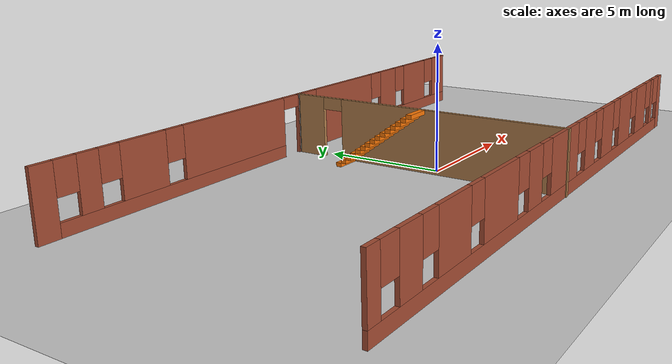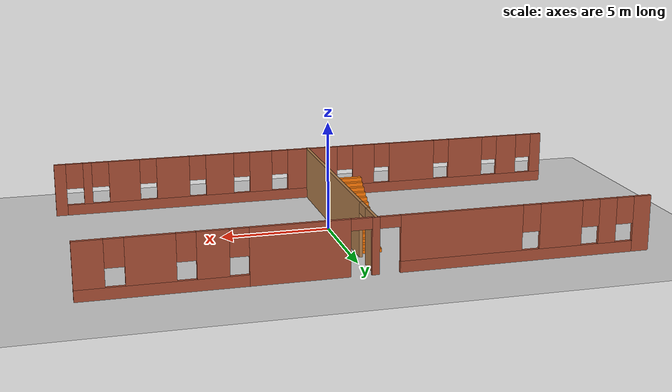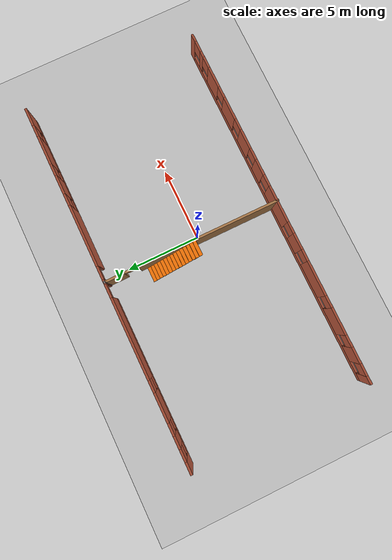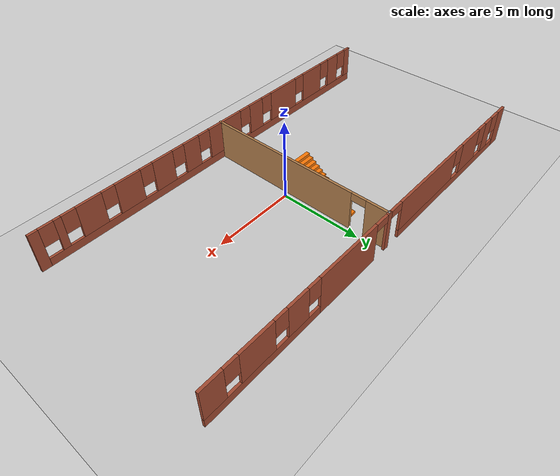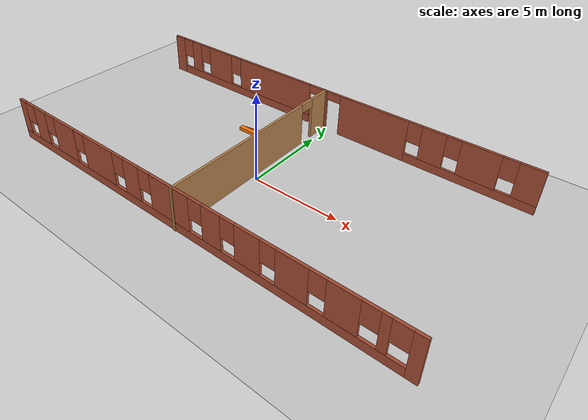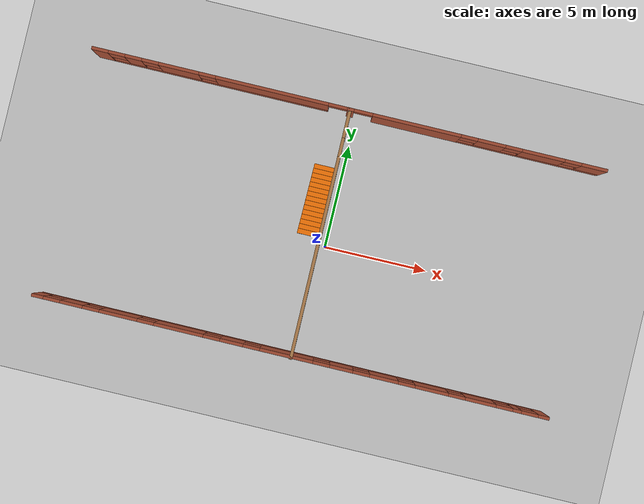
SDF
<sdf version="1.6">
 <world name="default">
  <model name="ground_plane">
   <static>1</static>
   <link name="link">
    <collision name="collision">
     <geometry><plane><normal>0 0 1</normal><size>100 100</size></plane></geometry>
     <surface><friction><ode><mu>100</mu><mu2>50</mu2></ode></friction></surface>
    </collision>
    <visual name="visual">
     <cast_shadows>0</cast_shadows>
     <geometry><plane><normal>0 0 1</normal><size>100 100</size></plane></geometry>
     <material>
      <script><uri>file://media/materials/scripts/gazebo.material</uri><name>Gazebo/Grey</name></script>
     </material>
    </visual>
   </link>
  </model>
  <model name="myhouse">
   <pose>-0.386417 0.578117 0 0 -0 0</pose>
   <link name="Stairs_2">
    <visual name="Stairs_2_Visual_0">
     <pose>-0.53356 3.12759 0.083333 0 -0 0</pose>
     <geometry><box><size>1 0.233333 0.166667</size></box></geometry>
     <material>
      <script><uri>file://media/materials/scripts/gazebo.material</uri><name>Gazebo/Grey</name></script>
      <ambient>0.996078 0.47451 0.0196078 1</ambient>
     </material>
    </visual>
    <collision name="Stairs_2_Collision_0">
     <geometry><box><size>1 0.233333 0.166667</size></box></geometry>
     <pose>-0.53356 3.12759 0.083333 0 -0 0</pose>
    </collision>
    <visual name="Stairs_2_Visual_1">
     <pose>-0.53356 2.89426 0.25 0 -0 0</pose>
     <geometry><box><size>1 0.233333 0.166667</size></box></geometry>
     <material>
      <script><uri>file://media/materials/scripts/gazebo.material</uri><name>Gazebo/Grey</name></script>
      <ambient>0.996078 0.47451 0.0196078 1</ambient>
     </material>
    </visual>
    <collision name="Stairs_2_Collision_1">
     <geometry><box><size>1 0.233333 0.166667</size></box></geometry>
     <pose>-0.53356 2.89426 0.25 0 -0 0</pose>
    </collision>
    <visual name="Stairs_2_Visual_2">
     <pose>-0.53356 2.66093 0.416667 0 -0 0</pose>
     <geometry><box><size>1 0.233333 0.166667</size></box></geometry>
     <material>
      <script><uri>file://media/materials/scripts/gazebo.material</uri><name>Gazebo/Grey</name></script>
      <ambient>0.996078 0.47451 0.0196078 1</ambient>
     </material>
    </visual>
    <collision name="Stairs_2_Collision_2">
     <geometry><box><size>1 0.233333 0.166667</size></box></geometry>
     <pose>-0.53356 2.66093 0.416667 0 -0 0</pose>
    </collision>
    <visual name="Stairs_2_Visual_3">
     <pose>-0.53356 2.4276 0.583333 0 -0 0</pose>
     <geometry><box><size>1 0.233333 0.166667</size></box></geometry>
     <material>
      <script><uri>file://media/materials/scripts/gazebo.material</uri><name>Gazebo/Grey</name></script>
      <ambient>0.996078 0.47451 0.0196078 1</ambient>
     </material>
    </visual>
    <collision name="Stairs_2_Collision_3">
     <geometry><box><size>1 0.233333 0.166667</size></box></geometry>
     <pose>-0.53356 2.4276 0.583333 0 -0 0</pose>
    </collision>
    <visual name="Stairs_2_Visual_4">
     <pose>-0.53356 2.19426 0.75 0 -0 0</pose>
     <geometry><box><size>1 0.233333 0.166667</size></box></geometry>
     <material>
      <script><uri>file://media/materials/scripts/gazebo.material</uri><name>Gazebo/Grey</name></script>
      <ambient>0.996078 0.47451 0.0196078 1</ambient>
     </material>
    </visual>
    <collision name="Stairs_2_Collision_4">
     <geometry><box><size>1 0.233333 0.166667</size></box></geometry>
     <pose>-0.53356 2.19426 0.75 0 -0 0</pose>
    </collision>
    <visual name="Stairs_2_Visual_5">
     <pose>-0.53356 1.96093 0.916667 0 -0 0</pose>
     <geometry><box><size>1 0.233333 0.166667</size></box></geometry>
     <material>
      <script><uri>file://media/materials/scripts/gazebo.material</uri><name>Gazebo/Grey</name></script>
      <ambient>0.996078 0.47451 0.0196078 1</ambient>
     </material>
    </visual>
    <collision name="Stairs_2_Collision_5">
     <geometry><box><size>1 0.233333 0.166667</size></box></geometry>
     <pose>-0.53356 1.96093 0.916667 0 -0 0</pose>
    </collision>
    <visual name="Stairs_2_Visual_6">
     <pose>-0.53356 1.72759 1.08333 0 -0 0</pose>
     <geometry><box><size>1 0.233333 0.166667</size></box></geometry>
     <material>
      <script><uri>file://media/materials/scripts/gazebo.material</uri><name>Gazebo/Grey</name></script>
      <ambient>0.996078 0.47451 0.0196078 1</ambient>
     </material>
    </visual>
    <collision name="Stairs_2_Collision_6">
     <geometry><box><size>1 0.233333 0.166667</size></box></geometry>
     <pose>-0.53356 1.72759 1.08333 0 -0 0</pose>
    </collision>
    <visual name="Stairs_2_Visual_7">
     <pose>-0.53356 1.49426 1.25 0 -0 0</pose>
     <geometry><box><size>1 0.233333 0.166667</size></box></geometry>
     <material>
      <script><uri>file://media/materials/scripts/gazebo.material</uri><name>Gazebo/Grey</name></script>
      <ambient>0.996078 0.47451 0.0196078 1</ambient>
     </material>
    </visual>
    <collision name="Stairs_2_Collision_7">
     <geometry><box><size>1 0.233333 0.166667</size></box></geometry>
     <pose>-0.53356 1.49426 1.25 0 -0 0</pose>
    </collision>
    <visual name="Stairs_2_Visual_8">
     <pose>-0.53356 1.26093 1.41667 0 -0 0</pose>
     <geometry><box><size>1 0.233333 0.166667</size></box></geometry>
     <material>
      <script><uri>file://media/materials/scripts/gazebo.material</uri><name>Gazebo/Grey</name></script>
      <ambient>0.996078 0.47451 0.0196078 1</ambient>
     </material>
    </visual>
    <collision name="Stairs_2_Collision_8">
     <geometry><box><size>1 0.233333 0.166667</size></box></geometry>
     <pose>-0.53356 1.26093 1.41667 0 -0 0</pose>
    </collision>
    <visual name="Stairs_2_Visual_9">
     <pose>-0.53356 1.0276 1.58333 0 -0 0</pose>
     <geometry><box><size>1 0.233333 0.166667</size></box></geometry>
     <material>
      <script><uri>file://media/materials/scripts/gazebo.material</uri><name>Gazebo/Grey</name></script>
      <ambient>0.996078 0.47451 0.0196078 1</ambient>
     </material>
    </visual>
    <collision name="Stairs_2_Collision_9">
     <geometry><box><size>1 0.233333 0.166667</size></box></geometry>
     <pose>-0.53356 1.0276 1.58333 0 -0 0</pose>
    </collision>
    <visual name="Stairs_2_Visual_10">
     <pose>-0.53356 0.794262 1.75 0 -0 0</pose>
     <geometry><box><size>1 0.233333 0.166667</size></box></geometry>
     <material>
      <script><uri>file://media/materials/scripts/gazebo.material</uri><name>Gazebo/Grey</name></script>
      <ambient>0.996078 0.47451 0.0196078 1</ambient>
     </material>
    </visual>
    <collision name="Stairs_2_Collision_10">
     <geometry><box><size>1 0.233333 0.166667</size></box></geometry>
     <pose>-0.53356 0.794262 1.75 0 -0 0</pose>
    </collision>
    <visual name="Stairs_2_Visual_11">
     <pose>-0.53356 0.560929 1.91667 0 -0 0</pose>
     <geometry><box><size>1 0.233333 0.166667</size></box></geometry>
     <material>
      <script><uri>file://media/materials/scripts/gazebo.material</uri><name>Gazebo/Grey</name></script>
      <ambient>0.996078 0.47451 0.0196078 1</ambient>
     </material>
    </visual>
    <collision name="Stairs_2_Collision_11">
     <geometry><box><size>1 0.233333 0.166667</size></box></geometry>
     <pose>-0.53356 0.560929 1.91667 0 -0 0</pose>
    </collision>
    <visual name="Stairs_2_Visual_12">
     <pose>-0.53356 0.327595 2.08333 0 -0 0</pose>
     <geometry><box><size>1 0.233333 0.166667</size></box></geometry>
     <material>
      <script><uri>file://media/materials/scripts/gazebo.material</uri><name>Gazebo/Grey</name></script>
      <ambient>0.996078 0.47451 0.0196078 1</ambient>
     </material>
    </visual>
    <collision name="Stairs_2_Collision_12">
     <geometry><box><size>1 0.233333 0.166667</size></box></geometry>
     <pose>-0.53356 0.327595 2.08333 0 -0 0</pose>
    </collision>
    <visual name="Stairs_2_Visual_13">
     <pose>-0.53356 0.094262 2.25 0 -0 0</pose>
     <geometry><box><size>1 0.233333 0.166667</size></box></geometry>
     <material>
      <script><uri>file://media/materials/scripts/gazebo.material</uri><name>Gazebo/Grey</name></script>
      <ambient>0.996078 0.47451 0.0196078 1</ambient>
     </material>
    </visual>
    <collision name="Stairs_2_Collision_13">
     <geometry><box><size>1 0.233333 0.166667</size></box></geometry>
     <pose>-0.53356 0.094262 2.25 0 -0 0</pose>
    </collision>
    <visual name="Stairs_2_Visual_14">
     <pose>-0.53356 -0.139071 2.41667 0 -0 0</pose>
     <geometry><box><size>1 0.233333 0.166667</size></box></geometry>
     <material>
      <script><uri>file://media/materials/scripts/gazebo.material</uri><name>Gazebo/Grey</name></script>
      <ambient>0.996078 0.47451 0.0196078 1</ambient>
     </material>
    </visual>
    <collision name="Stairs_2_Collision_14">
     <geometry><box><size>1 0.233333 0.166667</size></box></geometry>
     <pose>-0.53356 -0.139071 2.41667 0 -0 0</pose>
    </collision>
   </link>
   <link name="Wall_14">
    <collision name="Wall_14_Collision">
     <geometry><box><size>0.16 0.15 2.5</size></box></geometry>
     <pose>0 0 1.25 0 -0 0</pose>
    </collision>
    <visual name="Wall_14_Visual">
     <pose>0 0 1.25 0 -0 0</pose>
     <geometry><box><size>0.16 0.15 2.5</size></box></geometry>
     <material>
      <script><uri>file://media/materials/scripts/gazebo.material</uri><name>Gazebo/Grey</name></script>
      <ambient>1 1 1 1</ambient>
     </material>
    </visual>
    <pose>0.03462 5.87902 0 0 -0 0</pose>
   </link>
   <link name="Wall_15">
    <pose>0.03962 -0.045979 0 0 0 -1.5708</pose>
    <visual name="Wall_15_Visual_0">
     <pose>-5.3025 0 1.25 0 -0 0</pose>
     <geometry><box><size>1.39499 0.15 2.5</size></box></geometry>
     <material>
      <script><uri>file://media/materials/scripts/gazebo.material</uri><name>Gazebo/Wood</name></script>
      <ambient>1 1 1 1</ambient>
     </material>
    </visual>
    <collision name="Wall_15_Collision_0">
     <geometry><box><size>1.39499 0.15 2.5</size></box></geometry>
     <pose>-5.3025 0 1.25 0 -0 0</pose>
    </collision>
    <visual name="Wall_15_Visual_1">
     <pose>1.1475 0 1.25 0 -0 0</pose>
     <geometry><box><size>9.70501 0.15 2.5</size></box></geometry>
     <material>
      <script><uri>file://media/materials/scripts/gazebo.material</uri><name>Gazebo/Wood</name></script>
      <ambient>1 1 1 1</ambient>
     </material>
    </visual>
    <collision name="Wall_15_Collision_1">
     <geometry><box><size>9.70501 0.15 2.5</size></box></geometry>
     <pose>1.1475 0 1.25 0 -0 0</pose>
    </collision>
    <visual name="Wall_15_Visual_2">
     <pose>-4.15501 0 2.25 0 -0 0</pose>
     <geometry><box><size>0.9 0.15 0.5</size></box></geometry>
     <material>
      <script><uri>file://media/materials/scripts/gazebo.material</uri><name>Gazebo/Wood</name></script>
      <ambient>1 1 1 1</ambient>
     </material>
    </visual>
    <collision name="Wall_15_Collision_2">
     <geometry><box><size>0.9 0.15 0.5</size></box></geometry>
     <pose>-4.15501 0 2.25 0 -0 0</pose>
    </collision>
   </link>
   <link name="Wall_7">
    <pose>0 5.91925 0 0 -0 0</pose>
    <visual name="Wall_7_Visual_0">
     <pose>-11.9743 0 1.25 0 -0 0</pose>
     <geometry><box><size>0.80136 0.15 2.5</size></box></geometry>
     <material>
      <script><uri>file://media/materials/scripts/gazebo.material</uri><name>Gazebo/Bricks</name></script>
      <ambient>0.435294 0.796078 0.67451 1</ambient>
     </material>
    </visual>
    <collision name="Wall_7_Collision_0">
     <geometry><box><size>0.80136 0.15 2.5</size></box></geometry>
     <pose>-11.9743 0 1.25 0 -0 0</pose>
    </collision>
    <visual name="Wall_7_Visual_1">
     <pose>0.05979 0 1.25 0 -0 0</pose>
     <geometry><box><size>0.326928 0.15 2.5</size></box></geometry>
     <material>
      <script><uri>file://media/materials/scripts/gazebo.material</uri><name>Gazebo/Bricks</name></script>
      <ambient>0.435294 0.796078 0.67451 1</ambient>
     </material>
    </visual>
    <collision name="Wall_7_Collision_1">
     <geometry><box><size>0.326928 0.15 2.5</size></box></geometry>
     <pose>0.05979 0 1.25 0 -0 0</pose>
    </collision>
    <visual name="Wall_7_Visual_2">
     <pose>3.24262 0 1.25 0 -0 0</pose>
     <geometry><box><size>4.23873 0.15 2.5</size></box></geometry>
     <material>
      <script><uri>file://media/materials/scripts/gazebo.material</uri><name>Gazebo/Bricks</name></script>
      <ambient>0.435294 0.796078 0.67451 1</ambient>
     </material>
    </visual>
    <collision name="Wall_7_Collision_2">
     <geometry><box><size>4.23873 0.15 2.5</size></box></geometry>
     <pose>3.24262 0 1.25 0 -0 0</pose>
    </collision>
    <visual name="Wall_7_Visual_3">
     <pose>-6.28866 0 0.25 0 -0 0</pose>
     <geometry><box><size>10.57 0.15 0.5</size></box></geometry>
     <material>
      <script><uri>file://media/materials/scripts/gazebo.material</uri><name>Gazebo/Bricks</name></script>
      <ambient>0.435294 0.796078 0.67451 1</ambient>
     </material>
    </visual>
    <collision name="Wall_7_Collision_3">
     <geometry><box><size>10.57 0.15 0.5</size></box></geometry>
     <pose>-6.28866 0 0.25 0 -0 0</pose>
    </collision>
    <visual name="Wall_7_Visual_4">
     <pose>8.86849 0 0.25 0 -0 0</pose>
     <geometry><box><size>7.01301 0.15 0.5</size></box></geometry>
     <material>
      <script><uri>file://media/materials/scripts/gazebo.material</uri><name>Gazebo/Bricks</name></script>
      <ambient>0.435294 0.796078 0.67451 1</ambient>
     </material>
    </visual>
    <collision name="Wall_7_Collision_4">
     <geometry><box><size>7.01301 0.15 0.5</size></box></geometry>
     <pose>8.86849 0 0.25 0 -0 0</pose>
    </collision>
    <visual name="Wall_7_Visual_5">
     <pose>-10.3691 0 1.5 0 -0 0</pose>
     <geometry><box><size>0.809086 0.15 2</size></box></geometry>
     <material>
      <script><uri>file://media/materials/scripts/gazebo.material</uri><name>Gazebo/Bricks</name></script>
      <ambient>0.435294 0.796078 0.67451 1</ambient>
     </material>
    </visual>
    <collision name="Wall_7_Collision_5">
     <geometry><box><size>0.809086 0.15 2</size></box></geometry>
     <pose>-10.3691 0 1.5 0 -0 0</pose>
    </collision>
    <visual name="Wall_7_Visual_6">
     <pose>-8.19683 0 1.5 0 -0 0</pose>
     <geometry><box><size>1.93545 0.15 2</size></box></geometry>
     <material>
      <script><uri>file://media/materials/scripts/gazebo.material</uri><name>Gazebo/Bricks</name></script>
      <ambient>0.435294 0.796078 0.67451 1</ambient>
     </material>
    </visual>
    <collision name="Wall_7_Collision_6">
     <geometry><box><size>1.93545 0.15 2</size></box></geometry>
     <pose>-8.19683 0 1.5 0 -0 0</pose>
    </collision>
    <visual name="Wall_7_Visual_7">
     <pose>-3.71639 0 1.5 0 -0 0</pose>
     <geometry><box><size>5.42543 0.15 2</size></box></geometry>
     <material>
      <script><uri>file://media/materials/scripts/gazebo.material</uri><name>Gazebo/Bricks</name></script>
      <ambient>0.435294 0.796078 0.67451 1</ambient>
     </material>
    </visual>
    <collision name="Wall_7_Collision_7">
     <geometry><box><size>5.42543 0.15 2</size></box></geometry>
     <pose>-3.71639 0 1.5 0 -0 0</pose>
    </collision>
    <visual name="Wall_7_Visual_8">
     <pose>-3.71639 0 1.5 0 -0 0</pose>
     <geometry><box><size>5.42543 0.15 2</size></box></geometry>
     <material>
      <script><uri>file://media/materials/scripts/gazebo.material</uri><name>Gazebo/Bricks</name></script>
      <ambient>0.435294 0.796078 0.67451 1</ambient>
     </material>
    </visual>
    <collision name="Wall_7_Collision_8">
     <geometry><box><size>5.42543 0.15 2</size></box></geometry>
     <pose>-3.71639 0 1.5 0 -0 0</pose>
    </collision>
    <visual name="Wall_7_Visual_9">
     <pose>6.82801 0 1.5 0 -0 0</pose>
     <geometry><box><size>1.33204 0.15 2</size></box></geometry>
     <material>
      <script><uri>file://media/materials/scripts/gazebo.material</uri><name>Gazebo/Bricks</name></script>
      <ambient>0.435294 0.796078 0.67451 1</ambient>
     </material>
    </visual>
    <collision name="Wall_7_Collision_9">
     <geometry><box><size>1.33204 0.15 2</size></box></geometry>
     <pose>6.82801 0 1.5 0 -0 0</pose>
    </collision>
    <visual name="Wall_7_Visual_10">
     <pose>9.31203 0 1.5 0 -0 0</pose>
     <geometry><box><size>2.03601 0.15 2</size></box></geometry>
     <material>
      <script><uri>file://media/materials/scripts/gazebo.material</uri><name>Gazebo/Bricks</name></script>
      <ambient>0.435294 0.796078 0.67451 1</ambient>
     </material>
    </visual>
    <collision name="Wall_7_Collision_10">
     <geometry><box><size>2.03601 0.15 2</size></box></geometry>
     <pose>9.31203 0 1.5 0 -0 0</pose>
    </collision>
    <visual name="Wall_7_Visual_11">
     <pose>11.7525 0 1.5 0 -0 0</pose>
     <geometry><box><size>1.24496 0.15 2</size></box></geometry>
     <material>
      <script><uri>file://media/materials/scripts/gazebo.material</uri><name>Gazebo/Bricks</name></script>
      <ambient>0.435294 0.796078 0.67451 1</ambient>
     </material>
    </visual>
    <collision name="Wall_7_Collision_11">
     <geometry><box><size>1.24496 0.15 2</size></box></geometry>
     <pose>11.7525 0 1.5 0 -0 0</pose>
    </collision>
    <visual name="Wall_7_Visual_12">
     <pose>-11.1736 0 1.9 0 -0 0</pose>
     <geometry><box><size>0.8 0.15 1.2</size></box></geometry>
     <material>
      <script><uri>file://media/materials/scripts/gazebo.material</uri><name>Gazebo/Bricks</name></script>
      <ambient>0.435294 0.796078 0.67451 1</ambient>
     </material>
    </visual>
    <collision name="Wall_7_Collision_12">
     <geometry><box><size>0.8 0.15 1.2</size></box></geometry>
     <pose>-11.1736 0 1.9 0 -0 0</pose>
    </collision>
    <visual name="Wall_7_Visual_13">
     <pose>5.76199 0 1.9 0 -0 0</pose>
     <geometry><box><size>0.8 0.15 1.2</size></box></geometry>
     <material>
      <script><uri>file://media/materials/scripts/gazebo.material</uri><name>Gazebo/Bricks</name></script>
      <ambient>0.435294 0.796078 0.67451 1</ambient>
     </material>
    </visual>
    <collision name="Wall_7_Collision_13">
     <geometry><box><size>0.8 0.15 1.2</size></box></geometry>
     <pose>5.76199 0 1.9 0 -0 0</pose>
    </collision>
    <visual name="Wall_7_Visual_14">
     <pose>-9.56455 0 1.9 0 -0 0</pose>
     <geometry><box><size>0.8 0.15 1.2</size></box></geometry>
     <material>
      <script><uri>file://media/materials/scripts/gazebo.material</uri><name>Gazebo/Bricks</name></script>
      <ambient>0.435294 0.796078 0.67451 1</ambient>
     </material>
    </visual>
    <collision name="Wall_7_Collision_14">
     <geometry><box><size>0.8 0.15 1.2</size></box></geometry>
     <pose>-9.56455 0 1.9 0 -0 0</pose>
    </collision>
    <visual name="Wall_7_Visual_15">
     <pose>-6.82911 0 1.9 0 -0 0</pose>
     <geometry><box><size>0.8 0.15 1.2</size></box></geometry>
     <material>
      <script><uri>file://media/materials/scripts/gazebo.material</uri><name>Gazebo/Bricks</name></script>
      <ambient>0.435294 0.796078 0.67451 1</ambient>
     </material>
    </visual>
    <collision name="Wall_7_Collision_15">
     <geometry><box><size>0.8 0.15 1.2</size></box></geometry>
     <pose>-6.82911 0 1.9 0 -0 0</pose>
    </collision>
    <visual name="Wall_7_Visual_16">
     <pose>7.89403 0 1.9 0 -0 0</pose>
     <geometry><box><size>0.8 0.15 1.2</size></box></geometry>
     <material>
      <script><uri>file://media/materials/scripts/gazebo.material</uri><name>Gazebo/Bricks</name></script>
      <ambient>0.435294 0.796078 0.67451 1</ambient>
     </material>
    </visual>
    <collision name="Wall_7_Collision_16">
     <geometry><box><size>0.8 0.15 1.2</size></box></geometry>
     <pose>7.89403 0 1.9 0 -0 0</pose>
    </collision>
    <visual name="Wall_7_Visual_17">
     <pose>10.73 0 1.9 0 -0 0</pose>
     <geometry><box><size>0.8 0.15 1.2</size></box></geometry>
     <material>
      <script><uri>file://media/materials/scripts/gazebo.material</uri><name>Gazebo/Bricks</name></script>
      <ambient>0.435294 0.796078 0.67451 1</ambient>
     </material>
    </visual>
    <collision name="Wall_7_Collision_17">
     <geometry><box><size>0.8 0.15 1.2</size></box></geometry>
     <pose>10.73 0 1.9 0 -0 0</pose>
    </collision>
    <visual name="Wall_7_Visual_18">
     <pose>0.673254 0 2.25 0 -0 0</pose>
     <geometry><box><size>0.9 0.15 0.5</size></box></geometry>
     <material>
      <script><uri>file://media/materials/scripts/gazebo.material</uri><name>Gazebo/Bricks</name></script>
      <ambient>0.435294 0.796078 0.67451 1</ambient>
     </material>
    </visual>
    <collision name="Wall_7_Collision_18">
     <geometry><box><size>0.9 0.15 0.5</size></box></geometry>
     <pose>0.673254 0 2.25 0 -0 0</pose>
    </collision>
    <visual name="Wall_7_Visual_19">
     <pose>-0.553674 0 2.25 0 -0 0</pose>
     <geometry><box><size>0.9 0.15 0.5</size></box></geometry>
     <material>
      <script><uri>file://media/materials/scripts/gazebo.material</uri><name>Gazebo/Bricks</name></script>
      <ambient>0.435294 0.796078 0.67451 1</ambient>
     </material>
    </visual>
    <collision name="Wall_7_Collision_19">
     <geometry><box><size>0.9 0.15 0.5</size></box></geometry>
     <pose>-0.553674 0 2.25 0 -0 0</pose>
    </collision>
    <visual name="Wall_7_Visual_20">
     <pose>-0.553674 0 2.25 0 -0 0</pose>
     <geometry><box><size>0.9 0.15 0.5</size></box></geometry>
     <material>
      <script><uri>file://media/materials/scripts/gazebo.material</uri><name>Gazebo/Bricks</name></script>
      <ambient>0.435294 0.796078 0.67451 1</ambient>
     </material>
    </visual>
    <collision name="Wall_7_Collision_20">
     <geometry><box><size>0.9 0.15 0.5</size></box></geometry>
     <pose>-0.553674 0 2.25 0 -0 0</pose>
    </collision>
   </link>
   <link name="Wall_9">
    <pose>0 -5.93075 0 0 -0 3.14159</pose>
    <visual name="Wall_9_Visual_0">
     <pose>-12.1045 0 1.25 0 -0 0</pose>
     <geometry><box><size>0.540985 0.15 2.5</size></box></geometry>
     <material>
      <script><uri>file://media/materials/scripts/gazebo.material</uri><name>Gazebo/Bricks</name></script>
      <ambient>1 1 1 1</ambient>
     </material>
    </visual>
    <collision name="Wall_9_Collision_0">
     <geometry><box><size>0.540985 0.15 2.5</size></box></geometry>
     <pose>-12.1045 0 1.25 0 -0 0</pose>
    </collision>
    <visual name="Wall_9_Visual_1">
     <pose>0.270493 0 0.25 0 -0 0</pose>
     <geometry><box><size>24.209 0.15 0.5</size></box></geometry>
     <material>
      <script><uri>file://media/materials/scripts/gazebo.material</uri><name>Gazebo/Bricks</name></script>
      <ambient>1 1 1 1</ambient>
     </material>
    </visual>
    <collision name="Wall_9_Collision_1">
     <geometry><box><size>24.209 0.15 0.5</size></box></geometry>
     <pose>0.270493 0 0.25 0 -0 0</pose>
    </collision>
    <visual name="Wall_9_Visual_2">
     <pose>-10.8306 0 1.5 0 -0 0</pose>
     <geometry><box><size>0.406814 0.15 2</size></box></geometry>
     <material>
      <script><uri>file://media/materials/scripts/gazebo.material</uri><name>Gazebo/Bricks</name></script>
      <ambient>1 1 1 1</ambient>
     </material>
    </visual>
    <collision name="Wall_9_Collision_2">
     <geometry><box><size>0.406814 0.15 2</size></box></geometry>
     <pose>-10.8306 0 1.5 0 -0 0</pose>
    </collision>
    <visual name="Wall_9_Visual_3">
     <pose>-9.09078 0 1.5 0 -0 0</pose>
     <geometry><box><size>1.47283 0.15 2</size></box></geometry>
     <material>
      <script><uri>file://media/materials/scripts/gazebo.material</uri><name>Gazebo/Bricks</name></script>
      <ambient>1 1 1 1</ambient>
     </material>
    </visual>
    <collision name="Wall_9_Collision_3">
     <geometry><box><size>1.47283 0.15 2</size></box></geometry>
     <pose>-9.09078 0 1.5 0 -0 0</pose>
    </collision>
    <visual name="Wall_9_Visual_4">
     <pose>-6.75761 0 1.5 0 -0 0</pose>
     <geometry><box><size>1.59352 0.15 2</size></box></geometry>
     <material>
      <script><uri>file://media/materials/scripts/gazebo.material</uri><name>Gazebo/Bricks</name></script>
      <ambient>1 1 1 1</ambient>
     </material>
    </visual>
    <collision name="Wall_9_Collision_4">
     <geometry><box><size>1.59352 0.15 2</size></box></geometry>
     <pose>-6.75761 0 1.5 0 -0 0</pose>
    </collision>
    <visual name="Wall_9_Visual_5">
     <pose>-4.47472 0 1.5 0 -0 0</pose>
     <geometry><box><size>1.37227 0.15 2</size></box></geometry>
     <material>
      <script><uri>file://media/materials/scripts/gazebo.material</uri><name>Gazebo/Bricks</name></script>
      <ambient>1 1 1 1</ambient>
     </material>
    </visual>
    <collision name="Wall_9_Collision_5">
     <geometry><box><size>1.37227 0.15 2</size></box></geometry>
     <pose>-4.47472 0 1.5 0 -0 0</pose>
    </collision>
    <visual name="Wall_9_Visual_6">
     <pose>-2.43319 0 1.5 0 -0 0</pose>
     <geometry><box><size>1.11079 0.15 2</size></box></geometry>
     <material>
      <script><uri>file://media/materials/scripts/gazebo.material</uri><name>Gazebo/Bricks</name></script>
      <ambient>1 1 1 1</ambient>
     </material>
    </visual>
    <collision name="Wall_9_Collision_6">
     <geometry><box><size>1.11079 0.15 2</size></box></geometry>
     <pose>-2.43319 0 1.5 0 -0 0</pose>
    </collision>
    <visual name="Wall_9_Visual_7">
     <pose>0.19163 0 1.5 0 -0 0</pose>
     <geometry><box><size>2.53885 0.15 2</size></box></geometry>
     <material>
      <script><uri>file://media/materials/scripts/gazebo.material</uri><name>Gazebo/Bricks</name></script>
      <ambient>1 1 1 1</ambient>
     </material>
    </visual>
    <collision name="Wall_9_Collision_7">
     <geometry><box><size>2.53885 0.15 2</size></box></geometry>
     <pose>0.19163 0 1.5 0 -0 0</pose>
    </collision>
    <visual name="Wall_9_Visual_8">
     <pose>2.81645 0 1.5 0 -0 0</pose>
     <geometry><box><size>1.11079 0.15 2</size></box></geometry>
     <material>
      <script><uri>file://media/materials/scripts/gazebo.material</uri><name>Gazebo/Bricks</name></script>
      <ambient>1 1 1 1</ambient>
     </material>
    </visual>
    <collision name="Wall_9_Collision_8">
     <geometry><box><size>1.11079 0.15 2</size></box></geometry>
     <pose>2.81645 0 1.5 0 -0 0</pose>
    </collision>
    <visual name="Wall_9_Visual_9">
     <pose>5.35076 0 1.5 0 -0 0</pose>
     <geometry><box><size>2.35783 0.15 2</size></box></geometry>
     <material>
      <script><uri>file://media/materials/scripts/gazebo.material</uri><name>Gazebo/Bricks</name></script>
      <ambient>1 1 1 1</ambient>
     </material>
    </visual>
    <collision name="Wall_9_Collision_9">
     <geometry><box><size>2.35783 0.15 2</size></box></geometry>
     <pose>5.35076 0 1.5 0 -0 0</pose>
    </collision>
    <visual name="Wall_9_Visual_10">
     <pose>8.23706 0 1.5 0 -0 0</pose>
     <geometry><box><size>1.81476 0.15 2</size></box></geometry>
     <material>
      <script><uri>file://media/materials/scripts/gazebo.material</uri><name>Gazebo/Bricks</name></script>
      <ambient>1 1 1 1</ambient>
     </material>
    </visual>
    <collision name="Wall_9_Collision_10">
     <geometry><box><size>1.81476 0.15 2</size></box></geometry>
     <pose>8.23706 0 1.5 0 -0 0</pose>
    </collision>
    <visual name="Wall_9_Visual_11">
     <pose>10.4797 0 1.5 0 -0 0</pose>
     <geometry><box><size>1.07056 0.15 2</size></box></geometry>
     <material>
      <script><uri>file://media/materials/scripts/gazebo.material</uri><name>Gazebo/Bricks</name></script>
      <ambient>1 1 1 1</ambient>
     </material>
    </visual>
    <collision name="Wall_9_Collision_11">
     <geometry><box><size>1.07056 0.15 2</size></box></geometry>
     <pose>10.4797 0 1.5 0 -0 0</pose>
    </collision>
    <visual name="Wall_9_Visual_12">
     <pose>12.095 0 1.5 0 -0 0</pose>
     <geometry><box><size>0.559998 0.15 2</size></box></geometry>
     <material>
      <script><uri>file://media/materials/scripts/gazebo.material</uri><name>Gazebo/Bricks</name></script>
      <ambient>1 1 1 1</ambient>
     </material>
    </visual>
    <collision name="Wall_9_Collision_12">
     <geometry><box><size>0.559998 0.15 2</size></box></geometry>
     <pose>12.095 0 1.5 0 -0 0</pose>
    </collision>
    <visual name="Wall_9_Visual_13">
     <pose>-11.434 0 1.9 0 -0 0</pose>
     <geometry><box><size>0.8 0.15 1.2</size></box></geometry>
     <material>
      <script><uri>file://media/materials/scripts/gazebo.material</uri><name>Gazebo/Bricks</name></script>
      <ambient>1 1 1 1</ambient>
     </material>
    </visual>
    <collision name="Wall_9_Collision_13">
     <geometry><box><size>0.8 0.15 1.2</size></box></geometry>
     <pose>-11.434 0 1.9 0 -0 0</pose>
    </collision>
    <visual name="Wall_9_Visual_14">
     <pose>-10.2272 0 1.9 0 -0 0</pose>
     <geometry><box><size>0.8 0.15 1.2</size></box></geometry>
     <material>
      <script><uri>file://media/materials/scripts/gazebo.material</uri><name>Gazebo/Bricks</name></script>
      <ambient>1 1 1 1</ambient>
     </material>
    </visual>
    <collision name="Wall_9_Collision_14">
     <geometry><box><size>0.8 0.15 1.2</size></box></geometry>
     <pose>-10.2272 0 1.9 0 -0 0</pose>
    </collision>
    <visual name="Wall_9_Visual_15">
     <pose>-7.95437 0 1.9 0 -0 0</pose>
     <geometry><box><size>0.8 0.15 1.2</size></box></geometry>
     <material>
      <script><uri>file://media/materials/scripts/gazebo.material</uri><name>Gazebo/Bricks</name></script>
      <ambient>1 1 1 1</ambient>
     </material>
    </visual>
    <collision name="Wall_9_Collision_15">
     <geometry><box><size>0.8 0.15 1.2</size></box></geometry>
     <pose>-7.95437 0 1.9 0 -0 0</pose>
    </collision>
    <visual name="Wall_9_Visual_16">
     <pose>-5.56085 0 1.9 0 -0 0</pose>
     <geometry><box><size>0.8 0.15 1.2</size></box></geometry>
     <material>
      <script><uri>file://media/materials/scripts/gazebo.material</uri><name>Gazebo/Bricks</name></script>
      <ambient>1 1 1 1</ambient>
     </material>
    </visual>
    <collision name="Wall_9_Collision_16">
     <geometry><box><size>0.8 0.15 1.2</size></box></geometry>
     <pose>-5.56085 0 1.9 0 -0 0</pose>
    </collision>
    <visual name="Wall_9_Visual_17">
     <pose>-3.38859 0 1.9 0 -0 0</pose>
     <geometry><box><size>0.8 0.15 1.2</size></box></geometry>
     <material>
      <script><uri>file://media/materials/scripts/gazebo.material</uri><name>Gazebo/Bricks</name></script>
      <ambient>1 1 1 1</ambient>
     </material>
    </visual>
    <collision name="Wall_9_Collision_17">
     <geometry><box><size>0.8 0.15 1.2</size></box></geometry>
     <pose>-3.38859 0 1.9 0 -0 0</pose>
    </collision>
    <visual name="Wall_9_Visual_18">
     <pose>-1.4778 0 1.9 0 -0 0</pose>
     <geometry><box><size>0.8 0.15 1.2</size></box></geometry>
     <material>
      <script><uri>file://media/materials/scripts/gazebo.material</uri><name>Gazebo/Bricks</name></script>
      <ambient>1 1 1 1</ambient>
     </material>
    </visual>
    <collision name="Wall_9_Collision_18">
     <geometry><box><size>0.8 0.15 1.2</size></box></geometry>
     <pose>-1.4778 0 1.9 0 -0 0</pose>
    </collision>
    <visual name="Wall_9_Visual_19">
     <pose>1.86106 0 1.9 0 -0 0</pose>
     <geometry><box><size>0.8 0.15 1.2</size></box></geometry>
     <material>
      <script><uri>file://media/materials/scripts/gazebo.material</uri><name>Gazebo/Bricks</name></script>
      <ambient>1 1 1 1</ambient>
     </material>
    </visual>
    <collision name="Wall_9_Collision_19">
     <geometry><box><size>0.8 0.15 1.2</size></box></geometry>
     <pose>1.86106 0 1.9 0 -0 0</pose>
    </collision>
    <visual name="Wall_9_Visual_20">
     <pose>3.77184 0 1.9 0 -0 0</pose>
     <geometry><box><size>0.8 0.15 1.2</size></box></geometry>
     <material>
      <script><uri>file://media/materials/scripts/gazebo.material</uri><name>Gazebo/Bricks</name></script>
      <ambient>1 1 1 1</ambient>
     </material>
    </visual>
    <collision name="Wall_9_Collision_20">
     <geometry><box><size>0.8 0.15 1.2</size></box></geometry>
     <pose>3.77184 0 1.9 0 -0 0</pose>
    </collision>
    <visual name="Wall_9_Visual_21">
     <pose>6.92968 0 1.9 0 -0 0</pose>
     <geometry><box><size>0.8 0.15 1.2</size></box></geometry>
     <material>
      <script><uri>file://media/materials/scripts/gazebo.material</uri><name>Gazebo/Bricks</name></script>
      <ambient>1 1 1 1</ambient>
     </material>
    </visual>
    <collision name="Wall_9_Collision_21">
     <geometry><box><size>0.8 0.15 1.2</size></box></geometry>
     <pose>6.92968 0 1.9 0 -0 0</pose>
    </collision>
    <visual name="Wall_9_Visual_22">
     <pose>9.54444 0 1.9 0 -0 0</pose>
     <geometry><box><size>0.8 0.15 1.2</size></box></geometry>
     <material>
      <script><uri>file://media/materials/scripts/gazebo.material</uri><name>Gazebo/Bricks</name></script>
      <ambient>1 1 1 1</ambient>
     </material>
    </visual>
    <collision name="Wall_9_Collision_22">
     <geometry><box><size>0.8 0.15 1.2</size></box></geometry>
     <pose>9.54444 0 1.9 0 -0 0</pose>
    </collision>
    <visual name="Wall_9_Visual_23">
     <pose>11.415 0 1.9 0 -0 0</pose>
     <geometry><box><size>0.8 0.15 1.2</size></box></geometry>
     <material>
      <script><uri>file://media/materials/scripts/gazebo.material</uri><name>Gazebo/Bricks</name></script>
      <ambient>1 1 1 1</ambient>
     </material>
    </visual>
    <collision name="Wall_9_Collision_23">
     <geometry><box><size>0.8 0.15 1.2</size></box></geometry>
     <pose>11.415 0 1.9 0 -0 0</pose>
    </collision>
   </link>
   <static>1</static>
  </model>
 </world>
</sdf>
